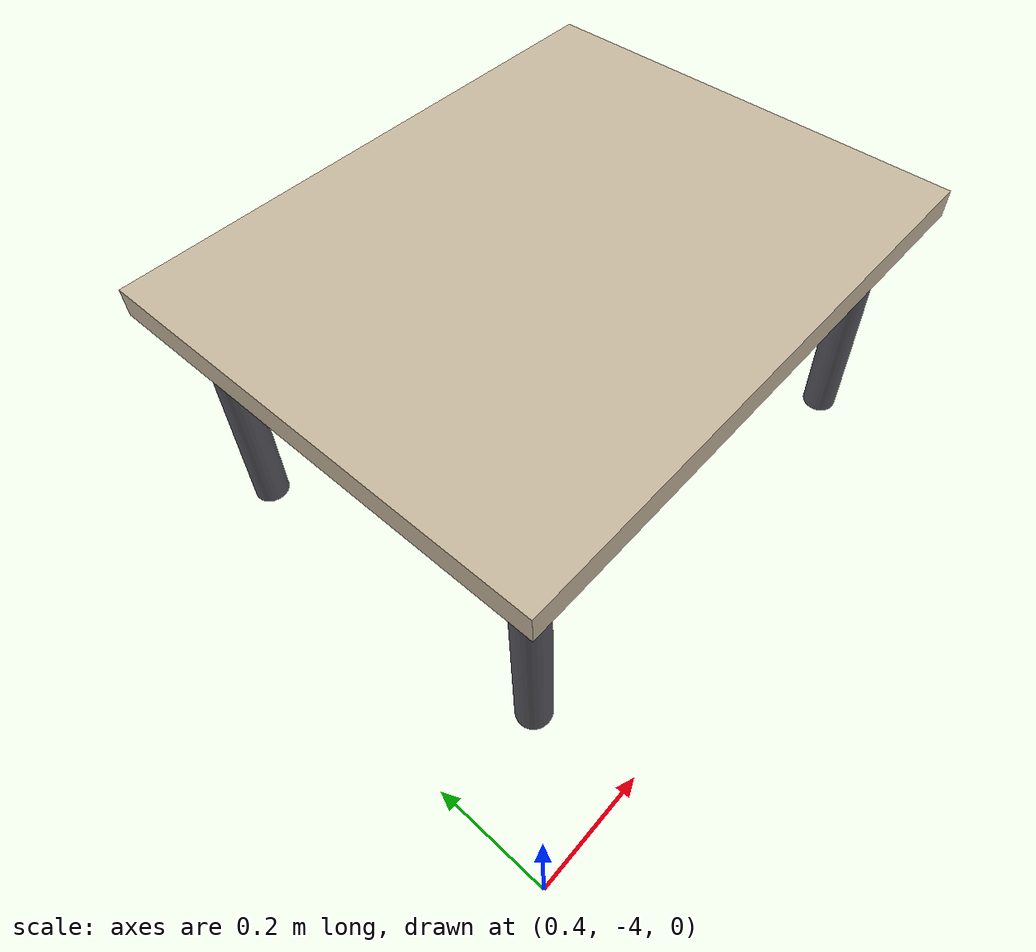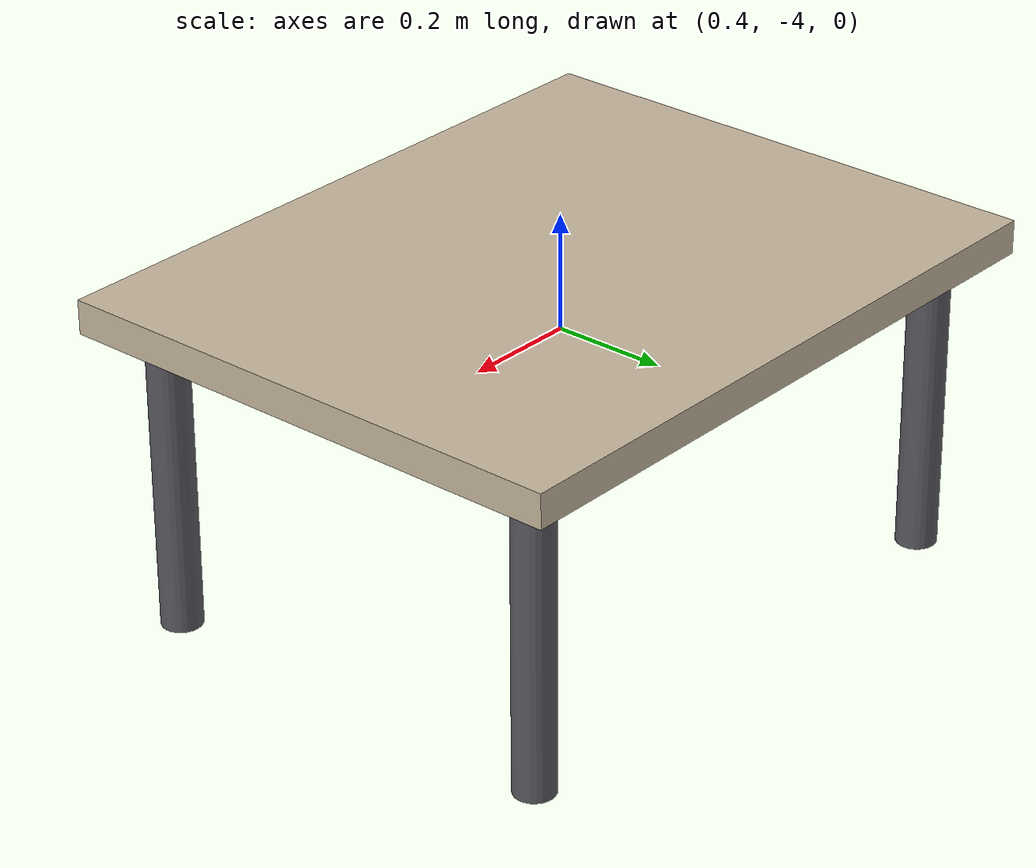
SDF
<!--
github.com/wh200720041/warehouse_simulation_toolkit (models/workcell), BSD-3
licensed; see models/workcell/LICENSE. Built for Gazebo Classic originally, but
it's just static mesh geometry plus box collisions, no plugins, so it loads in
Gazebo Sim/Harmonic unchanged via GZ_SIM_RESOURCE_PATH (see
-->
<sdf version="1.9">
 <world name="foxglove_demo">
  <physics name="1ms" type="ode">
   <max_step_size>0.001</max_step_size>
   <real_time_factor>1.0</real_time_factor>
  </physics>
  <plugin filename="gz-sim-physics-system" name="gz::sim::systems::Physics"/>
  <plugin filename="gz-sim-user-commands-system" name="gz::sim::systems::UserCommands"/>
  <plugin filename="gz-sim-scene-broadcaster-system" name="gz::sim::systems::SceneBroadcaster"/>
  <plugin filename="gz-sim-sensors-system" name="gz::sim::systems::Sensors">
   <render_engine>ogre2</render_engine>
  </plugin>
  <scene>
   <ambient>0.5 0.5 0.5 1</ambient>
   <background>0.4 0.42 0.45 1</background>
   <shadows>false</shadows>
  </scene>
  <light type="directional" name="sun">
   <cast_shadows>false</cast_shadows>
   <pose>0 0 10 0 0 0</pose>
   <diffuse>0.8 0.8 0.8 1</diffuse>
   <specular>0.2 0.2 0.2 1</specular>
   <direction>-0.5 0.1 -0.9</direction>
  </light>
  <light type="point" name="factory_light_1">
   <cast_shadows>false</cast_shadows>
   <pose>0 -3 6 0 0 0</pose>
   <diffuse>0.9 0.9 0.85 1</diffuse>
   <specular>0.1 0.1 0.1 1</specular>
   <attenuation><range>20</range><linear>0.1</linear><quadratic>0.01</quadratic></attenuation>
  </light>
  <light type="point" name="factory_light_2">
   <cast_shadows>false</cast_shadows>
   <pose>0 3 6 0 0 0</pose>
   <diffuse>0.9 0.9 0.85 1</diffuse>
   <specular>0.1 0.1 0.1 1</specular>
   <attenuation><range>20</range><linear>0.1</linear><quadratic>0.01</quadratic></attenuation>
  </light>
  <model name="arm_table_top">
   <static>true</static>
   <pose>1.0 -3.5 0.475 0 0 0</pose>
   <link name="link">
    <collision name="collision"><geometry><box><size>1.0 0.8 0.05</size></box></geometry></collision>
    <visual name="visual">
     <geometry><box><size>1.0 0.8 0.05</size></box></geometry>
     <material><ambient>0.78 0.72 0.62 1</ambient><diffuse>0.78 0.72 0.62 1</diffuse></material>
    </visual>
   </link>
  </model>
  <model name="arm_table_leg_1">
   <static>true</static>
   <pose>1.42 -3.18 0.225 0 0 0</pose>
   <link name="link">
    <collision name="collision">
     <geometry><cylinder><radius>0.03</radius><length>0.45</length></cylinder></geometry>
    </collision>
    <visual name="visual">
     <geometry><cylinder><radius>0.03</radius><length>0.45</length></cylinder></geometry>
     <material><ambient>0.35 0.35 0.38 1</ambient><diffuse>0.35 0.35 0.38 1</diffuse></material>
    </visual>
   </link>
  </model>
  <model name="arm_table_leg_2">
   <static>true</static>
   <pose>1.42 -3.82 0.225 0 0 0</pose>
   <link name="link">
    <collision name="collision">
     <geometry><cylinder><radius>0.03</radius><length>0.45</length></cylinder></geometry>
    </collision>
    <visual name="visual">
     <geometry><cylinder><radius>0.03</radius><length>0.45</length></cylinder></geometry>
     <material><ambient>0.35 0.35 0.38 1</ambient><diffuse>0.35 0.35 0.38 1</diffuse></material>
    </visual>
   </link>
  </model>
  <model name="arm_table_leg_3">
   <static>true</static>
   <pose>0.58 -3.18 0.225 0 0 0</pose>
   <link name="link">
    <collision name="collision">
     <geometry><cylinder><radius>0.03</radius><length>0.45</length></cylinder></geometry>
    </collision>
    <visual name="visual">
     <geometry><cylinder><radius>0.03</radius><length>0.45</length></cylinder></geometry>
     <material><ambient>0.35 0.35 0.38 1</ambient><diffuse>0.35 0.35 0.38 1</diffuse></material>
    </visual>
   </link>
  </model>
  <model name="arm_table_leg_4">
   <static>true</static>
   <pose>0.58 -3.82 0.225 0 0 0</pose>
   <link name="link">
    <collision name="collision">
     <geometry><cylinder><radius>0.03</radius><length>0.45</length></cylinder></geometry>
    </collision>
    <visual name="visual">
     <geometry><cylinder><radius>0.03</radius><length>0.45</length></cylinder></geometry>
     <material><ambient>0.35 0.35 0.38 1</ambient><diffuse>0.35 0.35 0.38 1</diffuse></material>
    </visual>
   </link>
  </model>
 </world>
</sdf>
